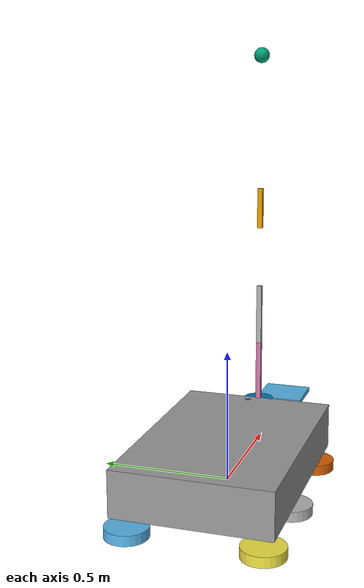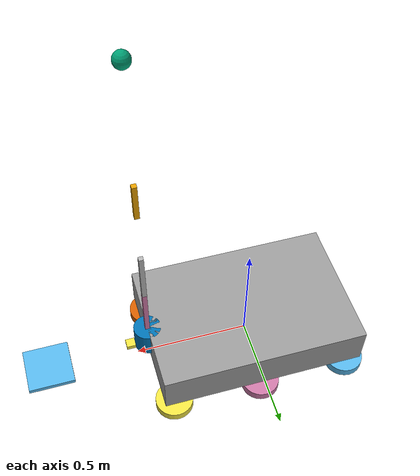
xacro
<?xml version="1.0"?>

<robot xmlns:xacro="http://www.ros.org/wiki/xacro" name="six_wheel_rover">

  <!-- Properties / parameters (tune these to match real hardware)   -->

  <!-- Basic geometry -->
  <xacro:property name="wheel_radius" value="0.083"/> <!-- meters ~ 83 mm radius (example) -->
  <xacro:property name="wheel_width" value="0.04"/>
  <xacro:property name="wheel_mass" value="0.75"/>

  <xacro:property name="chassis_length" value="0.9"/>
  <xacro:property name="chassis_width" value="0.6"/>
  <xacro:property name="chassis_height" value="0.18"/>
  <xacro:property name="chassis_mass" value="18.0"/>

  <!-- steering servo properties -->
  <xacro:property name="steer_mass" value="0.12"/>

  <!-- arm properties -->
  <xacro:property name="arm_base_height" value="0.12"/>
  <xacro:property name="arm_link_mass" value="0.5"/>

  <!-- inertial guesses for wheel / links -->
  <xacro:property name="wheel_ixx" value="0.001"/>
  <xacro:property name="wheel_iyy" value="0.002"/>
  <xacro:property name="wheel_izz" value="0.001"/>

  <!-- names for joints arrays -->
  <xacro:property name="wheel_joints" value="[wheel_fl_hinge, wheel_fr_hinge, wheel_ml_hinge, wheel_mr_hinge, wheel_rl_hinge, wheel_rr_hinge]"/>

  <!-- Base link (chassis) -->
  <link name="base_link">
    <inertial>
      <origin xyz="0 0 ${chassis_height/2}" rpy="0 0 0"/>
      <mass value="${chassis_mass}"/>
      <!-- approximate box inertia: I = 1/12 m (h^2 + d^2) etc. Use simple diagonal values -->
      <inertia ixx="0.8" ixy="0.0" ixz="0.0" iyy="1.2" iyz="0.0" izz="1.5"/>
    </inertial>
    <visual>
      <origin xyz="0 0 ${chassis_height/2}" rpy="0 0 0"/>
      <geometry>
        <box size="${chassis_length} ${chassis_width} ${chassis_height}"/>
      </geometry>
      <material name="gray"/>
    </visual>
    <collision>
      <origin xyz="0 0 ${chassis_height/2}" rpy="0 0 0"/>
      <geometry>
        <box size="${chassis_length} ${chassis_width} ${chassis_height}"/>
      </geometry>
    </collision>
  </link>

  <!-- A small front link to mount arm and camera -->
  <link name="front_link">
    <visual>
      <origin xyz="${chassis_length/2} 0 0.05" rpy="0 0 0"/>
      <geometry>
        <box size="0.2 0.2 0.02"/>
      </geometry>
    </visual>
  </link>

  <joint name="base_to_front" type="fixed">
    <parent link="base_link"/>
    <child link="front_link"/>
    <origin xyz="${chassis_length/2} 0 0.0" rpy="0 0 0"/>
  </joint>

  <!-- Steering assemblies (four corners) and six wheels             -->
  <!-- We model steering as a revolute joint around Z on a small steer_link -->
  <!-- Wheel hinge is revolute around Y (rolling axis) parented to steer_link (for corners) or base_link (for middles) -->

  <!-- helper macro: steering corner -->
  <xacro:macro name="steer_corner" params="prefix x y z">
    <!-- steer link -->
    <link name="${prefix}_steer_link">
      <inertial>
        <mass value="${steer_mass}"/>
        <origin xyz="0 0 0" rpy="0 0 0"/>
        <inertia ixx="0.0001" ixy="0" ixz="0" iyy="0.0001" iyz="0" izz="0.0001"/>
      </inertial>
      <visual>
        <origin xyz="0 0 0" rpy="0 0 0"/>
        <geometry>
          <cylinder length="0.02" radius="0.03"/>
        </geometry>
      </visual>
    </link>

    <joint name="${prefix}_steer_joint" type="revolute">
      <parent link="base_link"/>
      <child link="${prefix}_steer_link"/>
      <origin xyz="${x} ${y} ${z}" rpy="0 0 0"/>
      <axis xyz="0 0 1"/>
      <limit lower="-1.5708" upper="1.5708" effort="10.0" velocity="1.0"/>
    </joint>

    <!-- wheel link -->
    <link name="${prefix}_wheel_link">
      <inertial>
        <origin xyz="0 0 0" rpy="0 0 0"/>
        <mass value="${wheel_mass}"/>
        <inertia ixx="${wheel_ixx}" ixy="0" ixz="0" iyy="${wheel_iyy}" iyz="0" izz="${wheel_izz}"/>
      </inertial>
      <visual>
        <origin xyz="0 0 0" rpy="0 0 0"/>
        <geometry>
          <cylinder length="${wheel_width}" radius="${wheel_radius}"/>
        </geometry>
      </visual>
      <collision>
        <origin xyz="0 0 0" rpy="0 0 0"/>
        <geometry>
          <cylinder length="${wheel_width}" radius="${wheel_radius}"/>
        </geometry>
      </collision>
    </link>

    <joint name="${prefix}_wheel_hinge" type="continuous">
      <parent link="${prefix}_steer_link"/>
      <child link="${prefix}_wheel_link"/>
      <!-- wheel offset: center under the steer link -->
      <origin xyz="0 0 -${wheel_radius}" rpy="0 0 0"/>
      <axis xyz="0 1 0"/>
    </joint>

    <!-- transmission for wheel -->
    <transmission name="${prefix}_wheel_trans">
      <type>transmission_interface/SimpleTransmission</type>
      <joint name="${prefix}_wheel_hinge"/>
      <actuator name="${prefix}_wheel_motor">
        <hardwareInterface>velocity</hardwareInterface>
      </actuator>
    </transmission>

    <!-- transmission for steering -->
    <transmission name="${prefix}_steer_trans">
      <type>transmission_interface/SimpleTransmission</type>
      <joint name="${prefix}_steer_joint"/>
      <actuator name="${prefix}_steer_servo">
        <hardwareInterface>position</hardwareInterface>
      </actuator>
    </transmission>

  </xacro:macro>

  <!-- positions for the corners and middles relative to base_link -->
  <!-- Front-left -->
  <xacro:steer_corner prefix="fl" x="${chassis_length/2 - 0.05}" y="${chassis_width/2 - 0.05}" z="0.02"/>
  <!-- Front-right -->
  <xacro:steer_corner prefix="fr" x="${chassis_length/2 - 0.05}" y="-${chassis_width/2 - 0.05}" z="0.02"/>

  <!-- Middle-left (no steering; attach wheel directly to base_link) -->
  <link name="ml_wheel_link">
    <inertial>
      <mass value="${wheel_mass}"/>
      <inertia ixx="${wheel_ixx}" ixy="0" ixz="0" iyy="${wheel_iyy}" iyz="0" izz="${wheel_izz}"/>
    </inertial>
    <visual>
      <origin xyz="0 0 0" rpy="0 0 0"/>
      <geometry>
        <cylinder length="${wheel_width}" radius="${wheel_radius}"/>
      </geometry>
    </visual>
  </link>
  <joint name="ml_wheel_hinge" type="continuous">
    <parent link="base_link"/>
    <child link="ml_wheel_link"/>
    <origin xyz="0 ${chassis_width/2 - 0.05} -${wheel_radius}" rpy="0 0 0"/>
    <axis xyz="0 1 0"/>
    <limit effort="20" velocity="20"/>
  </joint>
  <transmission name="ml_wheel_trans">
    <type>transmission_interface/SimpleTransmission</type>
    <joint name="ml_wheel_hinge"/>
    <actuator name="ml_wheel_motor">
      <hardwareInterface>velocity</hardwareInterface>
    </actuator>
  </transmission>

  <!-- Middle-right -->
  <link name="mr_wheel_link">
    <inertial>
      <mass value="${wheel_mass}"/>
      <inertia ixx="${wheel_ixx}" ixy="0" ixz="0" iyy="${wheel_iyy}" iyz="0" izz="${wheel_izz}"/>
    </inertial>
    <visual>
      <origin xyz="0 0 0" rpy="0 0 0"/>
      <geometry>
        <cylinder length="${wheel_width}" radius="${wheel_radius}"/>
      </geometry>
    </visual>
  </link>
  <joint name="mr_wheel_hinge" type="continuous">
    <parent link="base_link"/>
    <child link="mr_wheel_link"/>
    <origin xyz="0 -${chassis_width/2 - 0.05} -${wheel_radius}" rpy="0 0 0"/>
    <axis xyz="0 1 0"/>
  </joint>
  <transmission name="mr_wheel_trans">
    <type>transmission_interface/SimpleTransmission</type>
    <joint name="mr_wheel_hinge"/>
    <actuator name="mr_wheel_motor">
      <hardwareInterface>velocity</hardwareInterface>
    </actuator>
  </transmission>

  <!-- Rear-left and Rear-right steering corners -->
  <xacro:steer_corner prefix="rl" x="-${chassis_length/2 - 0.05}" y="${chassis_width/2 - 0.05}" z="0.02"/>
  <xacro:steer_corner prefix="rr" x="-${chassis_length/2 - 0.05}" y="-${chassis_width/2 - 0.05}" z="0.02"/>

  <!-- arm base link -->
  <link name="arm_base_link">
    <inertial>
      <mass value="1.2"/>
      <origin xyz="0 0 ${arm_base_height/2}" rpy="0 0 0"/>
      <inertia ixx="0.02" ixy="0" ixz="0" iyy="0.02" iyz="0" izz="0.02"/>
    </inertial>
    <visual>
      <origin xyz="0 0 ${arm_base_height/2}" rpy="0 0 0"/>
      <geometry>
        <cylinder length="${arm_base_height}" radius="0.06"/>
      </geometry>
    </visual>
  </link>

  <joint name="front_to_arm_base" type="fixed">
    <parent link="front_link"/>
    <child link="arm_base_link"/>
    <origin xyz="0 0 0.06" rpy="0 0 0"/>
  </joint>

  <!-- Joint 1: base yaw -->
  <link name="arm_link_1" />
  <joint name="arm_joint_1" type="revolute">
    <parent link="arm_base_link"/>
    <child link="arm_link_1"/>
    <origin xyz="0 0 ${arm_base_height}" rpy="0 0 0"/>
    <axis xyz="0 0 1"/>
    <limit lower="-3.1416" upper="3.1416" effort="50" velocity="1.0"/>
  </joint>

  <!-- Joint 2: shoulder -->
  <link name="arm_link_2">
    <visual>
      <origin xyz="0 0 0.12" rpy="0 0 0"/>
      <geometry>
        <box size="0.02 0.02 0.24"/>
      </geometry>
    </visual>
  </link>
  <joint name="arm_joint_2" type="revolute">
    <parent link="arm_link_1"/>
    <child link="arm_link_2"/>
    <origin xyz="0 0 0" rpy="0 0 0"/>
    <axis xyz="0 1 0"/>
    <limit lower="-1.5708" upper="1.5708" effort="50" velocity="1.0"/>
  </joint>

  <!-- Joint 3: elbow -->
  <link name="arm_link_3">
    <visual>
      <origin xyz="0 0 0.12" rpy="0 0 0"/>
      <geometry>
        <box size="0.02 0.02 0.24"/>
      </geometry>
    </visual>
  </link>
  <joint name="arm_joint_3" type="revolute">
    <parent link="arm_link_2"/>
    <child link="arm_link_3"/>
    <origin xyz="0 0 0.24" rpy="0 0 0"/>
    <axis xyz="0 1 0"/>
    <limit lower="-2.0" upper="2.0" effort="40" velocity="1.0"/>
  </joint>

  <!-- Joint 4: wrist pitch -->
  <link name="arm_link_4">
    <visual>
      <origin xyz="0 0 0.08" rpy="0 0 0"/>
      <geometry>
        <box size="0.02 0.02 0.16"/>
      </geometry>
    </visual>
  </link>
  <joint name="arm_joint_4" type="revolute">
    <parent link="arm_link_3"/>
    <child link="arm_link_4"/>
    <origin xyz="0 0 0.48" rpy="0 0 0"/>
    <axis xyz="0 1 0"/>
    <limit lower="-1.5708" upper="1.5708" effort="20" velocity="1.0"/>
  </joint>

  <!-- Joint 5: wrist roll (continuous) -->
  <link name="arm_link_5"/>
  <joint name="arm_joint_5" type="continuous">
    <parent link="arm_link_4"/>
    <child link="arm_link_5"/>
    <origin xyz="0 0 0.64" rpy="0 0 0"/>
    <axis xyz="0 0 1"/>
  </joint>

  <!-- end effector -->
  <link name="arm_ee_link">
    <inertial>
      <mass value="0.2"/>
      <origin xyz="0 0 0.02" rpy="0 0 0"/>
      <inertia ixx="0.0005" ixy="0" ixz="0" iyy="0.0005" iyz="0" izz="0.0005"/>
    </inertial>
    <visual>
      <origin xyz="0 0 0.02" rpy="0 0 0"/>
      <geometry>
        <sphere radius="0.03"/>
      </geometry>
    </visual>
  </link>
  <joint name="arm_ee_fixed" type="fixed">
    <parent link="arm_link_5"/>
    <child link="arm_ee_link"/>
    <origin xyz="0 0 0.02" rpy="0 0 0"/>
  </joint>

  <!-- transmissions for arm joints (position controllers) -->
  <transmission name="arm_joint_1_trans">
    <type>transmission_interface/SimpleTransmission</type>
    <joint name="arm_joint_1"/>
    <actuator name="arm_joint_1_motor"><hardwareInterface>position</hardwareInterface></actuator>
  </transmission>
  <transmission name="arm_joint_2_trans">
    <type>transmission_interface/SimpleTransmission</type>
    <joint name="arm_joint_2"/>
    <actuator name="arm_joint_2_motor"><hardwareInterface>position</hardwareInterface></actuator>
  </transmission>
  <transmission name="arm_joint_3_trans">
    <type>transmission_interface/SimpleTransmission</type>
    <joint name="arm_joint_3"/>
    <actuator name="arm_joint_3_motor"><hardwareInterface>position</hardwareInterface></actuator>
  </transmission>
  <transmission name="arm_joint_4_trans">
    <type>transmission_interface/SimpleTransmission</type>
    <joint name="arm_joint_4"/>
    <actuator name="arm_joint_4_motor"><hardwareInterface>position</hardwareInterface></actuator>
  </transmission>
  <transmission name="arm_joint_5_trans">
    <type>transmission_interface/SimpleTransmission</type>
    <joint name="arm_joint_5"/>
    <actuator name="arm_joint_5_motor"><hardwareInterface>position</hardwareInterface></actuator>
  </transmission>

  <!-- Sensors: Kinect (rgbd), IMU, GPS (placeholders + gazebo plugins) -->
  <!-- Put camera on front of rover, IMU on base_link, GPS as sensor on top -->

  <link name="camera_link">
    <visual>
      <origin xyz="0 0 0" rpy="0 0 0"/>
      <geometry>
        <box size="0.04 0.04 0.02"/>
      </geometry>
    </visual>
  </link>
  <joint name="front_to_camera" type="fixed">
    <parent link="front_link"/>
    <child link="camera_link"/>
    <origin xyz="0.08 0 0.08" rpy="0 0 0"/>
  </joint>

  <!-- IMU link -->
  <link name="imu_link"/>
  <joint name="base_to_imu" type="fixed">
    <parent link="base_link"/>
    <child link="imu_link"/>
    <origin xyz="0 0 0.06" rpy="0 0 0"/>
  </joint>

  <!-- GPS link -->
  <link name="gps_link"/>
  <joint name="base_to_gps" type="fixed">
    <parent link="base_link"/>
    <child link="gps_link"/>
    <origin xyz="0 0 0.16" rpy="0 0 0"/>
  </joint>

  <!-- Gazebo plugin and sensor tags -->
  <!-- Note: These plugin tags are suitable for Gazebo simulation via gazebo_ros_pkgs -->

  <gazebo>
    <plugin name="gazebo_ros_control" filename="libgazebo_ros_control.so">
      <robotNamespace>/</robotNamespace>
    </plugin>
  </gazebo>

  <!-- IMU plugin on imu_link -->
  <gazebo reference="imu_link">
    <sensor type="imu" name="imu_sensor">
      <update_rate>200.0</update_rate>
      <plugin name="gazebo_ros_imu_sensor" filename="libgazebo_ros_imu_sensor.so">
        <topicName>/imu/data</topicName>
        <frameName>imu_link</frameName>
      </plugin>
    </sensor>
  </gazebo>

  <!-- Kinect (RGBD) -- use gazebo_ros_openni_kinect or camera sensor plugin -->
  <gazebo reference="camera_link">
    <sensor type="camera" name="kinect_rgb">
      <camera name="kinect_rgb">
        <horizontal_fov>1.047</horizontal_fov>
        <image>
          <width>640</width>
          <height>480</height>
          <format>R8G8B8</format>
        </image>
        <clip>
          <near>0.1</near>
          <far>10.0</far>
        </clip>
      </camera>
      <plugin name="gazebo_ros_camera" filename="libgazebo_ros_camera.so">
        <alwaysOn>true</alwaysOn>
        <update_rate>30.0</update_rate>
        <cameraName>kinect</cameraName>
        <imageTopicName>rgb/image_raw</imageTopicName>
        <cameraInfoTopicName>rgb/camera_info</cameraInfoTopicName>
        <depthImageTopicName>depth/image_raw</depthImageTopicName>
        <pointCloudTopicName>points</pointCloudTopicName>
        <frameName>camera_link</frameName>
      </plugin>
    </sensor>
  </gazebo>

  <!-- GPS plugin on gps_link: gazebo_ros_gps_plugin or navsat_gazebo_plugin -->
  <gazebo reference="gps_link">
    <sensor type="gps" name="gps_sensor">
      <plugin name="gazebo_ros_gps" filename="libgazebo_gps_plugin.so">
        <topicName>/gps/fix</topicName>
        <frameName>gps_link</frameName>
      </plugin>
    </sensor>
  </gazebo>

  <!-- Joint groups for convenience (optional)                        -->
  <!-- joint names listed for controllers.yaml mapping if needed -->

  <!-- Wheels list
       wheel_fl_hinge, wheel_fr_hinge, ml_wheel_hinge, mr_wheel_hinge, wheel_rl_hinge, wheel_rr_hinge
  -->

  <!-- Steering joints: fl_steer_joint, fr_steer_joint, rl_steer_joint, rr_steer_joint -->

  <!-- Arm joints: arm_joint_1 .. arm_joint_5 -->

</robot>
